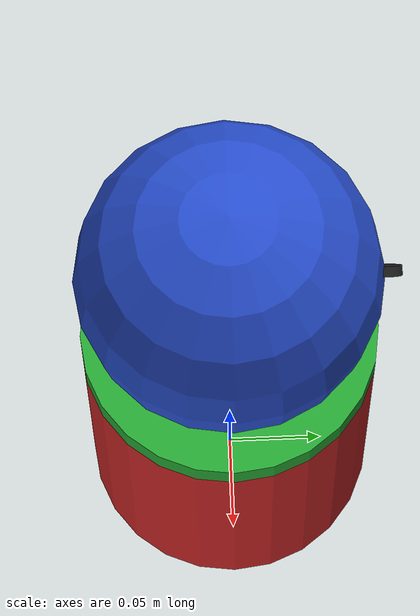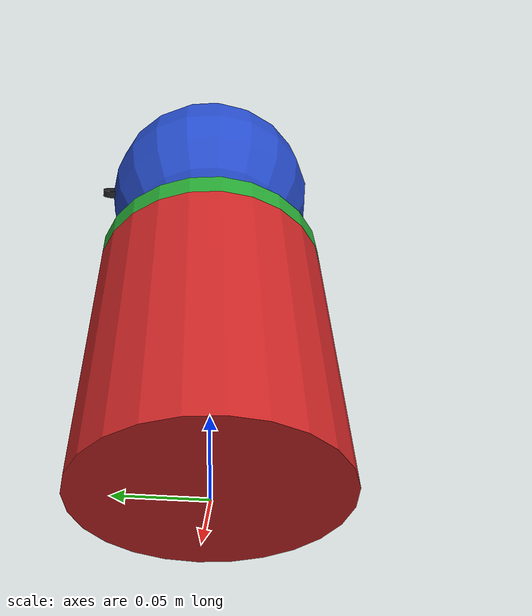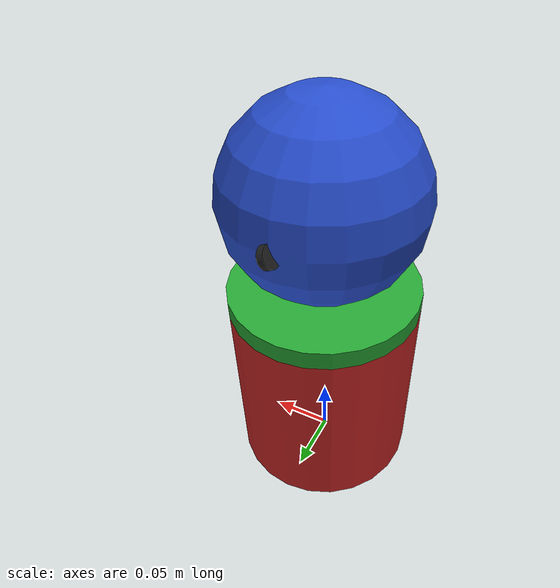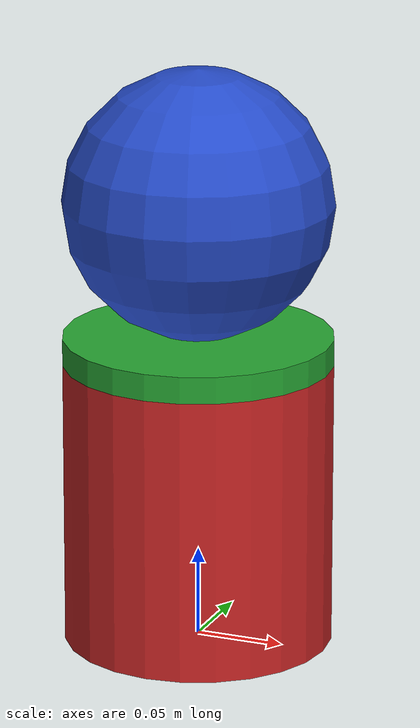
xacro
<?xml version="1.0" encoding="UTF-8"?>
<!--
This is loaded by robot_state_publisher and used to calculate poses from odometry and joint messages.
-->
<robot xmlns:xacro="http://www.ros.org/wiki/xacro" name="homebot">
    <xacro:include filename="$(find ros_homebot_description)/urdf/materials.urdf.xacro" />
    <!-- dimensions in meters -->
    <xacro:property name="torso_radius" value="0.075" /><!-- 150 mm diameter = 75 mm radius -->
    <xacro:property name="torso_height" value="0.16" /><!-- 160 mm height -->
    <xacro:property name="neck_height" value="0.015" />
    <xacro:property name="camera_radius" value="0.008" />
    <xacro:property name="camera_thickness" value="0.005" />
    <xacro:property name="M_PI" value="3.141592653589793" />

    <link name="base_link">
        <visual>
            <geometry>
                <cylinder length="${torso_height}" radius="${torso_radius}" />
            </geometry>
            <origin xyz="0 0 ${torso_height/2}" rpy="0 0 0" />
            <material name="red" />
        </visual>
    </link>

    <link name="imu">
        <visual>
            <geometry>
                <box size=".03 .015 .01" />
            </geometry>
            <origin xyz="0 0 0" rpy="0 0 0" />
            <material name="orange" />
        </visual>
    </link>

    <link name="neck">
        <visual>
            <geometry>
                <cylinder length="${neck_height}" radius="${torso_radius}" />
            </geometry>
            <origin xyz="0 0 ${neck_height/2}" rpy="0 0 0" />
            <material name="green" />
        </visual>
    </link>

    <link name="head">
        <visual>
            <geometry>
                <sphere radius="${torso_radius}" />
            </geometry>
            <origin xyz="0 0 0" rpy="0 0 0" />
            <material name="blue" />
        </visual>
    </link>

    <link name="camera">
        <visual>
            <geometry>
                <cylinder length="${camera_thickness}" radius="${camera_radius}" />
            </geometry>
            <origin xyz="0 0 0" rpy="0 90 0" />
            <material name="black" />
        </visual>
    </link>

    <joint name="base_link_to_neck_joint" type="continuous">
        <parent link="base_link" />
        <child link="neck" />
        <origin xyz="0 0 ${torso_height+neck_height}" rpy="0 ${M_PI} 0" />
        <axis xyz="0 0 1" />
    </joint>

    <joint name="base_link_to_imu" type="fixed">
        <parent link="base_link" />
        <child link="imu" />
        <origin xyz="0 ${torso_radius - .015} ${torso_height - .01}" rpy="0 0 0" />
    </joint>

    <joint name="neck_to_head_joint" type="revolute">
        <parent link="neck" />
        <child link="head" />
        <origin xyz="0 0 ${-(torso_radius)}" rpy="${M_PI/2} 0 ${M_PI}" />
        <axis xyz="1 0 0" />
        <!-- Should match TILT_MIN/TILT_MAX in ros_homebot_python/constants.py -->
        <limit lower="${(90-65)*M_PI/180}" upper="${(90+65)*M_PI/180}" effort="50" velocity="1"/>
    </joint>

    <joint name="head_to_camera_joint" type="fixed">
        <parent link="head" />
        <child link="camera" />
        <origin xyz="0 ${torso_radius} 0" rpy="0 0 0" />
    </joint>

</robot>
